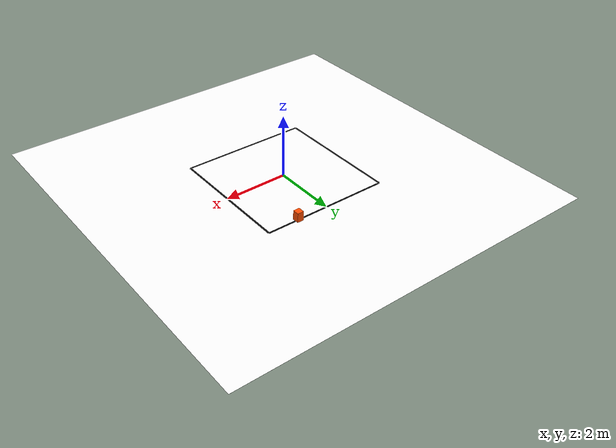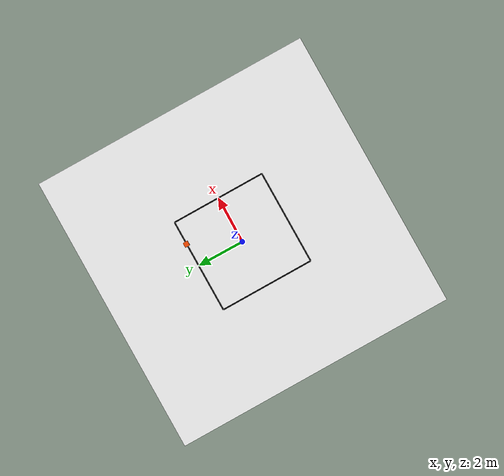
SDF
<?xml version="1.0"?>
<sdf version="1.6">
  <world name="line_world">

    <!-- Lighting -->
    <include>
      <uri>model://sun</uri>
    </include>

    <!-- Physics -->
    <physics type="ode">
      <real_time_update_rate>1000</real_time_update_rate>
      <max_step_size>0.001</max_step_size>
    </physics>

    <!-- White Ground -->
    <model name="white_floor">
      <static>true</static>
      <pose>0 0 -0.001 0 0 0</pose>
      <link name="link">
        <collision name="collision">
          <geometry>
            <box>
              <size>12 12 0.002</size>
            </box>
          </geometry>
        </collision>

        <visual name="visual">
          <geometry>
            <box>
              <size>12 12 0.002</size>
            </box>
          </geometry>
          <material>
            <ambient>1 1 1 1</ambient>
            <diffuse>1 1 1 1</diffuse>
          </material>
        </visual>
      </link>
    </model>

    <!-- Square Line Path -->

    <!-- Bottom -->
    <model name="line_bottom">
      <static>true</static>
      <pose>0 -2 0.001 0 0 0</pose>
      <link name="link">
        <visual name="visual">
          <geometry>
            <box>
              <size>4 0.06 0.001</size>
            </box>
          </geometry>
          <material>
            <ambient>0 0 0 1</ambient>
            <diffuse>0 0 0 1</diffuse>
          </material>
        </visual>
      </link>
    </model>

    <!-- Right -->
    <model name="line_right">
      <static>true</static>
      <pose>2 0 0.001 0 0 1.5708</pose>
      <link name="link">
        <visual name="visual">
          <geometry>
            <box>
              <size>4 0.06 0.001</size>
            </box>
          </geometry>
          <material>
            <ambient>0 0 0 1</ambient>
            <diffuse>0 0 0 1</diffuse>
          </material>
        </visual>
      </link>
    </model>

    <!-- Top -->
    <model name="line_top">
      <static>true</static>
      <pose>0 2 0.001 0 0 0</pose>
      <link name="link">
        <visual name="visual">
          <geometry>
            <box>
              <size>4 0.06 0.001</size>
            </box>
          </geometry>
          <material>
            <ambient>0 0 0 1</ambient>
            <diffuse>0 0 0 1</diffuse>
          </material>
        </visual>
      </link>
    </model>

    <!-- Left -->
    <model name="line_left">
      <static>true</static>
      <pose>-2 0 0.001 0 0 1.5708</pose>
      <link name="link">
        <visual name="visual">
          <geometry>
            <box>
              <size>4 0.06 0.001</size>
            </box>
          </geometry>
          <material>
            <ambient>0 0 0 1</ambient>
            <diffuse>0 0 0 1</diffuse>
          </material>
        </visual>
      </link>
    </model>

    <!-- Obstacle on Top Path -->
    <model name="obstacle_1">
      <static>true</static>
      <pose>1 2 0.15 0 0 0</pose>
      <link name="link">
        <collision name="collision">
          <geometry>
            <box>
              <size>0.2 0.2 0.3</size>
            </box>
          </geometry>
        </collision>

        <visual name="visual">
          <geometry>
            <box>
              <size>0.2 0.2 0.3</size>
            </box>
          </geometry>
          <material>
            <ambient>1 0.3 0 1</ambient>
            <diffuse>1 0.3 0 1</diffuse>
          </material>
        </visual>
      </link>
    </model>

  </world>
</sdf>
